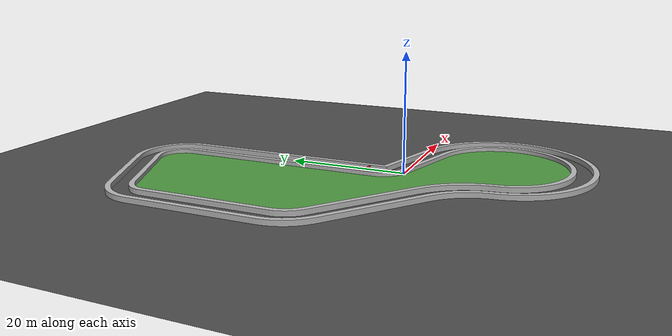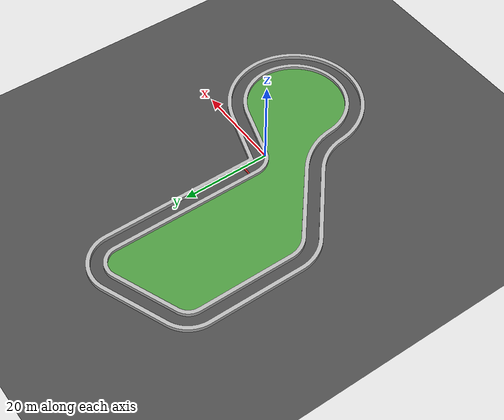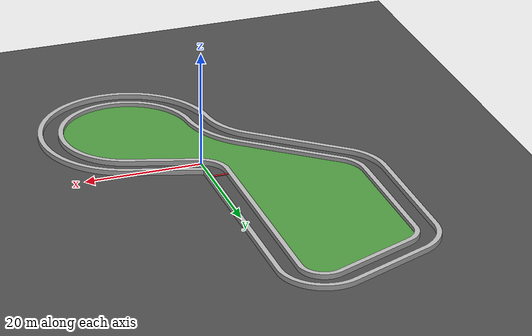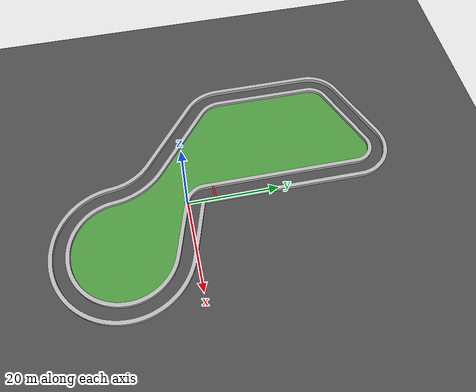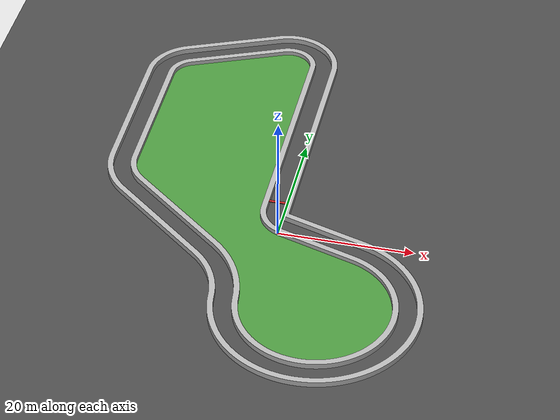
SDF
<sdf version="1.6">
 <world name="default">
  <light name="sun" type="directional">
   <pose>0 0 10 0 -0 0</pose>
   <diffuse>204 204 204 1</diffuse>
   <specular>51 51 51 1</specular>
   <attenuation>
    <range>1000</range>
    <constant>0.9</constant>
    <linear>0.01</linear>
    <quadratic>0.001</quadratic>
   </attenuation>
   <direction>-0.5 -0.5 -1</direction>
  </light>
  <physics name="default_physics" default="0" type="ode">
   <max_step_size>0.001</max_step_size>
   <real_time_factor>1</real_time_factor>
   <real_time_update_rate>1000</real_time_update_rate>
  </physics>
  <spherical_coordinates>
   <surface_model>EARTH_WGS84</surface_model>
   <latitude_deg>0</latitude_deg>
   <longitude_deg>0</longitude_deg>
   <elevation>0</elevation>
   <heading_deg>0</heading_deg>
  </spherical_coordinates>
  <gravity>0 0 -9.8</gravity>
  <magnetic_field>6e-06 2.3e-05 -4.2e-05</magnetic_field>
  <atmosphere type="adiabatic"/>
  <include><uri>model://ground2</uri></include>
  <include><uri>model://grass2</uri><pose>0 0 0.1 1.57079632 0 0</pose></include>
  <include><uri>model://walll2</uri><pose>0 0 0 1.57079632 0 0</pose></include>
  <include><uri>model://wallr2</uri><pose>0 0 0 1.57079632 0 0</pose></include>
  <include><uri>model://redline</uri><pose>-1.2 6 0.7 0 0 0</pose></include>
 </world>
</sdf>

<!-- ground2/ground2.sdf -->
<sdf version='1.6'>
  <model name="ground2">
    <static>true</static>
    <pose>0 0 0 0 0 0</pose>

    <link name="ground">
      <pose>-2 8 0.05 0 0 0</pose>
      <visual name="ground">
      <material>
            <script>
                <uri>model://road1/materials/scripts</uri>
                <uri>model://road1/materials/textures</uri>
                <name>vrc/road</name>
            </script>
        </material>
        <geometry>
          <plane>
            <size>60 80</size>
          </plane>
        </geometry>
      </visual>
      <collision name="ground">
        <geometry>
          <plane>
            <size>60 80</size>
          </plane>
        </geometry>
      </collision>
    </link>

  </model>
</sdf>

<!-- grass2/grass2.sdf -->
<sdf version='1.6'>
  <model name="grass2">
    <static>true</static>
    <pose>0 0 0 0 0 0</pose>

    <link name="grass2">
      <pose>0 0 0 0 0 0</pose>
      <visual name="grass">
           <material>
            <script>
                <uri>model://grass2/materials/scripts</uri>
                <uri>model://grass2/materials/textures</uri>
                <name>vrc/grass</name>
            </script>
        </material>
        <geometry>
          <mesh>
            <uri>model://grass2/meshes/RT2_Grass.dae</uri>
            <scale>1.7 1.7 1.7</scale>
          </mesh>
        </geometry>
      </visual>
      <collision name="grass">
        <geometry>
          <mesh>
            <uri>model://grass2/meshes/RT2_Grass.dae</uri>
            <scale>1.7 1.7 1.7</scale>
          </mesh>
        </geometry>
      </collision>
    </link>

  </model>
</sdf>

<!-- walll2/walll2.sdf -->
<sdf version='1.6'>
  <model name="walll2">
    <static>true</static>
    <pose>0 0 0 0 0 0</pose>

    <link name="walll2">
      <pose>0 0 0 0 0 0</pose>
      <visual name="walll">
        <geometry>
          <mesh>
            <uri>model://walll2/meshes/RT2_Wall2.dae</uri>
            <scale>1.7 1.7 1.7</scale>
          </mesh>
        </geometry>
      </visual>
      <collision name="walll">
        <geometry>
          <mesh>
            <uri>model://walll2/meshes/RT2_Wall2.dae</uri>
            <scale>1.7 1.7 1.7</scale>
          </mesh>
        </geometry>
      </collision>
    </link>

  </model>
</sdf>

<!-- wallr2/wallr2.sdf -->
<sdf version='1.6'>
  <model name="wallr2">
    <static>true</static>
    <pose>0 0 0 0 0 0</pose>

    <link name="wallr2">
      <pose>0 0 0 0 0 0</pose>
      <visual name="wallr">
        <geometry>
          <mesh>
            <uri>model://wallr2/meshes/RT2_Wall1.dae</uri>
            <scale>1.7 1.7 1.7</scale>
          </mesh>
        </geometry>
      </visual>
      <collision name="wallr">
        <geometry>
          <mesh>
            <uri>model://wallr2/meshes/RT2_Wall1.dae</uri>
            <scale>1.7 1.7 1.7</scale>
          </mesh>
        </geometry>
      </collision>
    </link>

  </model>
</sdf>

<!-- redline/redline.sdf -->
<sdf version='1.6'>
  <model name="redline">
    <static>true</static>
    <pose>0 0 0 0 0 0</pose>

    <link name="redline">
      <pose>0 0 0 0 0 0</pose>
      <visual name="redline">
      <material>
            <script>
                <uri>model://redline/materials/scripts</uri>
                <uri>model://redline/materials/textures</uri>
                <name>vrc/redline</name>
            </script>
        </material>
        <geometry>
          <box>
            <size>3.5 0.4 0.1</size>
          </box>
        </geometry>
      </visual>
    </link>

  </model>
</sdf>
